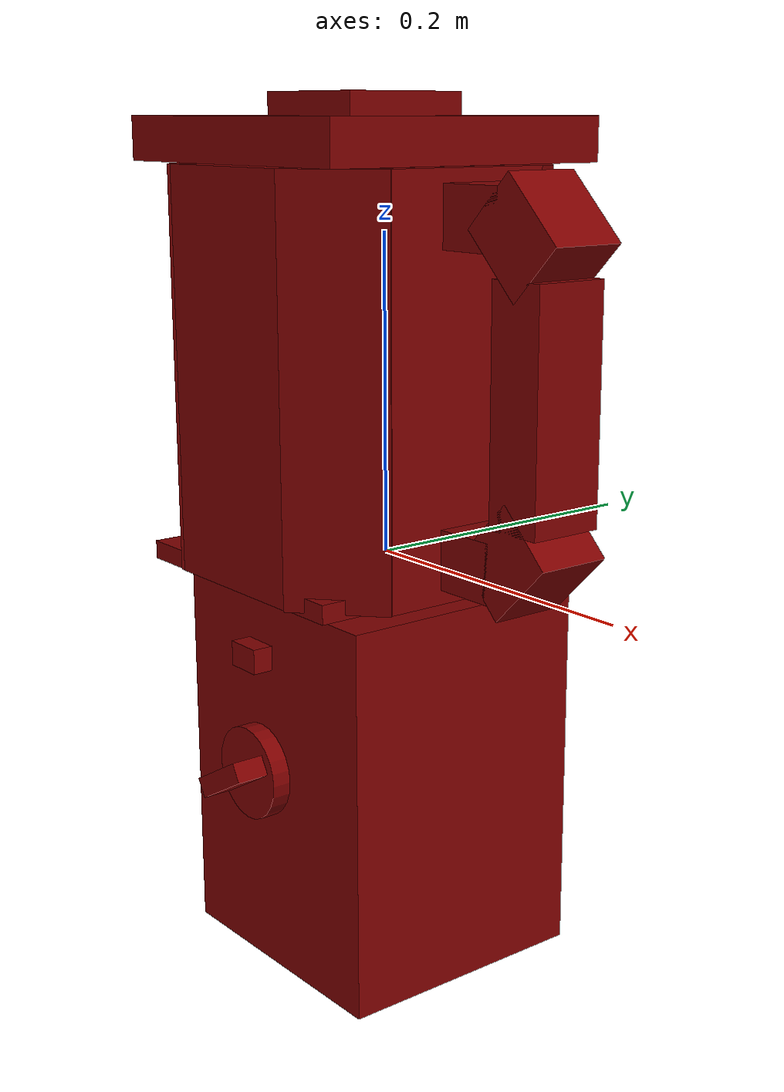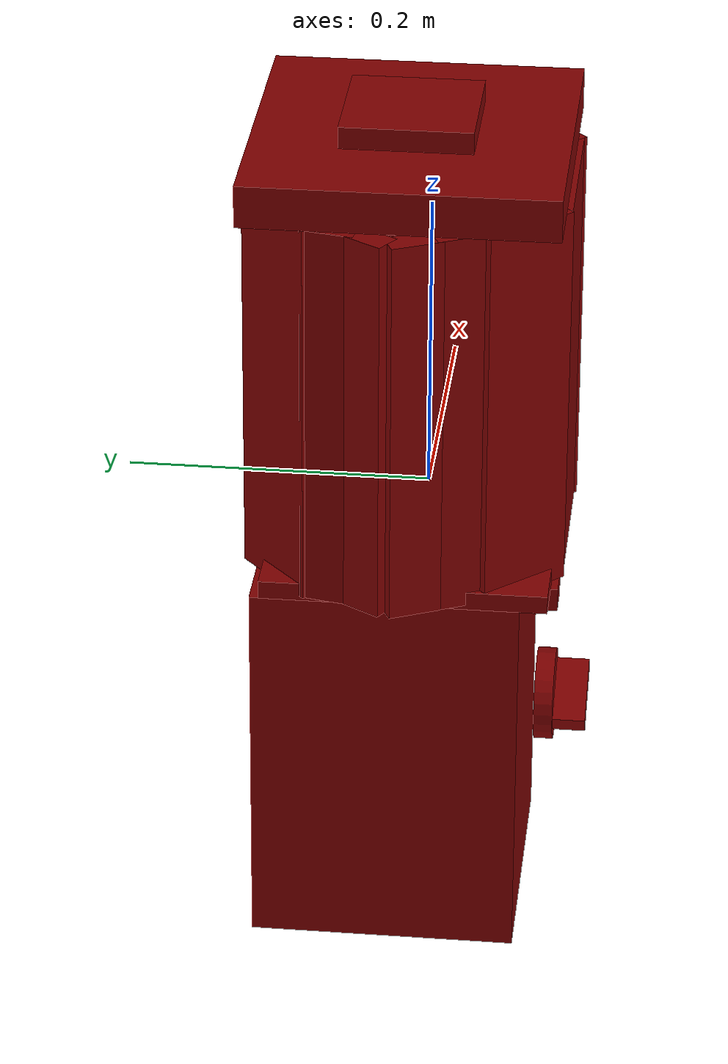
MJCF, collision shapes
<?xml version='1.0' encoding='UTF-8'?>
<mujoco model="model">
  <option timestep="0.0005" gravity="0.0 0.0 -9.81"/>
  <compiler angle="radian"/>
  <asset>
    <mesh file="visuals/Blade001.obj" name="Blade001_vis"/>
    <mesh file="visuals/Body001.obj" name="Body001_vis"/>
    <mesh file="visuals/Button001.obj" name="Button001_vis"/>
    <mesh file="visuals/Jug001.obj" name="Jug001_vis"/>
    <mesh file="visuals/Jug001_Clear.obj" name="Jug001_Clear_vis"/>
    <mesh file="visuals/Knob001.obj" name="Knob001_vis"/>
    <mesh file="visuals/Lid001.obj" name="Lid001_vis"/>
    <texture file="visuals/T_BC001.png" name="Body001_material" type="2d"/>
    <material name="Body001_material" rgba="1 1 1 1.0" texture="Body001_material" shininess="0.4472135901451111" specular="0.3103448502657381"/>
    <texture file="visuals/T_BC001.png" name="Button001_material" type="2d"/>
    <material name="Button001_material" rgba="1 1 1 1.0" texture="Button001_material" shininess="0.4472135901451111" specular="0.3103448502657381"/>
    <texture file="visuals/T_BC001.png" name="Jug001_Clear_material" type="2d"/>
    <material name="Jug001_Clear_material" rgba="1 1 1 0.699999988079071" texture="Jug001_Clear_material" shininess="0.4472135901451111" specular="0.3103448502657381"/>
    <texture file="visuals/T_BC001.png" name="Blade001_material" type="2d"/>
    <material name="Blade001_material" rgba="1 1 1 1.0" texture="Blade001_material" shininess="0.4472135901451111" specular="5"/>
    <texture file="visuals/T_BC001.png" name="Jug001_material" type="2d"/>
    <material name="Jug001_material" rgba="1 1 1 1.0" texture="Jug001_material" shininess="0.4472135901451111" specular="0.3103448502657381"/>
    <texture file="visuals/T_BC001.png" name="Knob001_material" type="2d"/>
    <material name="Knob001_material" rgba="1 1 1 1.0" texture="Knob001_material" shininess="0.4472135901451111" specular="0.3103448502657381"/>
    <texture file="visuals/T_BC001.png" name="Lid001_material" type="2d"/>
    <material name="Lid001_material" rgba="1 1 1 1.0" texture="Lid001_material" shininess="0.4472135901451111" specular="0.3103448502657381"/>
  </asset>
  <default>
    <default class="visual">
      <geom conaffinity="0" contype="0" group="1" type="mesh"/>
    </default>
    <default class="collision">
      <geom group="0" rgba="0.5 0 0 0.5"/>
    </default>
    <default class="spawn">
      <geom group="0" rgba="1 1 1 0.5" contype="0" conaffinity="0"/>
      <site group="0" rgba="1 1 1 0.5"/>
    </default>
    <default class="region">
      <geom group="1" conaffinity="0" contype="0" rgba="0 1 0 0"/>
    </default>
  </default>
  <worldbody>
    <body>
      <body name="object">
        <geom mesh="Body001_vis" type="mesh" solimp="0.998 0.998 0.001" solref="0.001 1" friction="0.95 0.3 0.1" class="visual" material="Body001_material"/>
        <geom class="collision" type="box" pos="-0.03150521 0.01790235 -0.15448266" size="0.09086184948682785 0.08694292604923248 0.12657050788402557" quat="1.0 0.0 0.0 0.0"/>
        <body name="Button001">
          <joint axis="0.0 1.0 0.0" pos="-0.03199682 -0.07664007 -0.08264117" limited="true" name="Button001_joint" range="0.0 0.005" type="slide" damping="1" frictionloss="1" armature=".01" stiffness="0.05"/>
          <geom mesh="Button001_vis" type="mesh" solimp="0.998 0.998 0.001" solref="0.001 1" friction="0.95 0.3 0.1" class="visual" material="Button001_material"/>
          <geom class="collision" type="box" pos="-0.03208427 -0.08243477 -0.06164037" size="0.012408987618982792 0.006734694819897413 0.008026663213968277" quat="1.0 0.0 0.0 0.0"/>
        </body>
        <body name="Jug001_Clear">
          <geom class="region" name="reg_int" type="box" pos="-0.032130729999999996 0.009665190000000004 0.13343475" size="0.06979121 0.0672799 0.08648693"/>
          <joint axis="0.0 0.0 1.0" pos="0.00048447 0.01028055 0.10387684" limited="true" name="Jug001_Clear_joint" range="0.0 0.05" type="slide" damping="1" frictionloss="1" armature=".01" stiffness="0.05"/>
          <geom mesh="Jug001_Clear_vis" type="mesh" solimp="0.998 0.998 0.001" solref="0.001 1" friction="0.95 0.3 0.1" class="visual" material="Jug001_Clear_material"/>
          <geom class="collision" type="box" pos="-0.03396280 0.10241802 0.11139487" size="0.056509215384721756 0.008711088448762894 0.12795716524124146" quat="1.0 0.0 0.0 0.0"/>
          <geom class="collision" type="box" pos="-0.11034779 0.08306386 0.11139487" size="0.032513655722141266 0.008711197413504124 0.12795889377593994" quat="0.933960497379303 0.0 0.0 0.35737624764442444"/>
          <geom class="collision" type="box" pos="0.04290636 0.08456930 0.11139487" size="0.032513655722141266 0.008711197413504124 0.12795889377593994" quat="0.933960497379303 0.0 -0.0 -0.35737624764442444"/>
          <geom class="collision" type="box" pos="-0.03396280 -0.08584690 0.11139487" size="0.05650930479168892 0.008711099624633789 0.12795734405517578" quat="1.0 0.0 0.0 0.0"/>
          <geom class="collision" type="box" pos="0.04290637 -0.06799819 0.11139487" size="0.032513655722141266 0.008711197413504124 0.12795889377593994" quat="0.933960497379303 0.0 0.0 0.35737624764442444"/>
          <geom class="collision" type="box" pos="-0.10846017 -0.06547634 0.11139487" size="0.03251366317272186 0.008711198344826698 0.12795889377593994" quat="0.9170170426368713 0.0 -0.0 -0.3988479971885681"/>
          <geom class="collision" type="box" pos="0.06268667 0.00538297 0.11139487" size="0.008711114525794983 0.05650939792394638 0.1279575228691101" quat="1.0 0.0 0.0 0.0"/>
          <geom class="collision" type="box" pos="-0.13156153 -0.02833338 0.11139487" size="0.017218004912137985 0.008711198344826698 0.12795889377593994" quat="0.5351915955543518 0.0 0.0 0.8447307348251343"/>
          <geom class="collision" type="box" pos="-0.14480387 -0.00115176 0.11139487" size="0.017218004912137985 0.008711198344826698 0.12795889377593994" quat="0.5351915955543518 0.0 0.0 0.8447307348251343"/>
          <geom class="collision" type="box" pos="-0.14253873 0.02812075 0.11139487" size="0.017218006774783134 0.008711198344826698 0.12795889377593994" quat="0.8767032623291016 0.0 0.0 0.481031596660614"/>
          <geom class="collision" type="box" pos="-0.13347819 0.05112058 0.11139487" size="0.017218006774783134 0.008711198344826698 0.12795889377593994" quat="0.7761645317077637 0.0 0.0 0.6305304169654846"/>
          <geom class="collision" type="box" pos="-0.04270641 0.00459594 -0.01354376" size="0.09490712732076645 0.0923057422041893 0.006025748793035746" quat="1.0 0.0 0.0 0.0"/>
          <geom class="collision" type="box" pos="0.09001044 0.01013495 0.21243706" size="0.02718629129230976 0.02422558329999447 0.018655451014637947" quat="1.0 0.0 0.0 0.0"/>
          <geom class="collision" type="box" pos="0.12858595 0.01013495 0.20359226" size="0.02718629315495491 0.02422558329999447 0.023177461698651314" quat="0.9241241216659546 -2.755961454328163e-15 0.38209235668182373 5.1337494255676575e-08"/>
          <geom class="collision" type="box" pos="0.13291556 0.01013495 0.10968557" size="0.01915726438164711 0.02422558329999447 0.07122552394866943" quat="1.0 0.0 0.0 0.0"/>
          <geom class="collision" type="box" pos="0.08524320 0.01013495 0.01115648" size="0.02718629129230976 0.02422558329999447 0.018655451014637947" quat="1.0 0.0 0.0 0.0"/>
          <geom class="collision" type="box" pos="0.12381871 0.01013495 0.02000128" size="0.02718629315495491 0.02422558329999447 0.023177461698651314" quat="0.9241241216659546 4.973259717388242e-16 -0.3820923864841461 5.133750136110393e-08"/>
          <body name="Blade001">
            <joint axis="0.0 0.0 1.0" pos="-0.03193976 0.01031788 0.01786305" limited="false" name="Blade001_joint" range="0 360" type="hinge" damping="1" frictionloss="1" armature=".01" stiffness="0.05"/>
            <geom mesh="Blade001_vis" type="mesh" solimp="0.998 0.998 0.001" solref="0.001 1" friction="0.95 0.3 0.1" class="visual" material="Blade001_material"/>
            <geom class="collision" type="box" pos="-0.03158057 0.01036866 0.00090644" size="0.015457836911082268 0.00963042676448822 0.0011948224855586886" quat="1.0 0.0 0.0 0.0"/>
            <geom class="collision" type="box" pos="-0.03187269 0.03373652 0.01832443" size="0.019890112802386284 0.00963042676448822 0.0011948226019740105" quat="0.5970932841300964 0.378787100315094 -0.3787870407104492 0.5970932245254517"/>
            <geom class="collision" type="box" pos="-0.03187269 0.01066077 0.00090644" size="0.009630427695810795 0.015457837842404842 0.0011948224855586886" quat="1.0 0.0 0.0 0.0"/>
            <geom class="collision" type="box" pos="-0.03187269 -0.01338489 0.01832443" size="0.019890112802386284 0.00963042676448822 0.0011948226019740105" quat="0.5970932245254517 -0.37878715991973877 0.3787870705127716 0.5970932245254517"/>
            <geom class="collision" type="box" pos="-0.05585026 0.01028198 0.01832443" size="0.019890110939741135 0.00963042676448822 0.0011948224855586886" quat="0.8444173336029053 -3.837460837985418e-08 0.5356858968734741 -5.7312807832943236e-09"/>
            <geom class="collision" type="box" pos="-0.00828349 0.01028198 0.01832443" size="0.019890112802386284 0.00963042676448822 0.0011948226019740105" quat="1.0835157837618681e-07 0.5356858968734741 1.1074719452608406e-07 -0.8444173336029053"/>
          </body>
          <body name="Jug001">
            <geom mesh="Jug001_vis" type="mesh" solimp="0.998 0.998 0.001" solref="0.001 1" friction="0.95 0.3 0.1" class="visual" material="Jug001_material"/>
            <geom class="collision" type="cylinder" pos="-0.03100953 0.01057824 -0.01475727" size="0.053082868456840515 0.012121236883103848" quat="1.0 0.0 0.0 0.0"/>
            <geom class="collision" type="box" pos="-0.03396280 0.10241802 0.11139487" size="0.056509215384721756 0.008711088448762894 0.12795716524124146" quat="1.0 0.0 0.0 0.0"/>
            <geom class="collision" type="box" pos="-0.11034779 0.08306386 0.11139487" size="0.032513655722141266 0.008711197413504124 0.12795889377593994" quat="0.933960497379303 0.0 0.0 0.35737624764442444"/>
            <geom class="collision" type="box" pos="0.04290636 0.08456930 0.11139487" size="0.032513655722141266 0.008711197413504124 0.12795889377593994" quat="0.933960497379303 0.0 -0.0 -0.35737624764442444"/>
            <geom class="collision" type="box" pos="-0.03396280 -0.08584690 0.11139487" size="0.05650930479168892 0.008711099624633789 0.12795734405517578" quat="1.0 0.0 0.0 0.0"/>
            <geom class="collision" type="box" pos="0.04290637 -0.06799819 0.11139487" size="0.032513655722141266 0.008711197413504124 0.12795889377593994" quat="0.933960497379303 0.0 0.0 0.35737624764442444"/>
            <geom class="collision" type="box" pos="-0.10846017 -0.06547634 0.11139487" size="0.03251366317272186 0.008711198344826698 0.12795889377593994" quat="0.9170170426368713 0.0 -0.0 -0.3988479971885681"/>
            <geom class="collision" type="box" pos="0.06268667 0.00538297 0.11139487" size="0.008711114525794983 0.05650939792394638 0.1279575228691101" quat="1.0 0.0 0.0 0.0"/>
            <geom class="collision" type="box" pos="-0.13156153 -0.02833338 0.11139487" size="0.017218004912137985 0.008711198344826698 0.12795889377593994" quat="0.5351915955543518 0.0 0.0 0.8447307348251343"/>
            <geom class="collision" type="box" pos="-0.14480387 -0.00115176 0.11139487" size="0.017218004912137985 0.008711198344826698 0.12795889377593994" quat="0.5351915955543518 0.0 0.0 0.8447307348251343"/>
            <geom class="collision" type="box" pos="-0.14253873 0.02812075 0.11139487" size="0.017218006774783134 0.008711198344826698 0.12795889377593994" quat="0.8767032623291016 0.0 0.0 0.481031596660614"/>
            <geom class="collision" type="box" pos="-0.13347819 0.05112058 0.11139487" size="0.017218006774783134 0.008711198344826698 0.12795889377593994" quat="0.7761645317077637 0.0 0.0 0.6305304169654846"/>
            <geom class="collision" type="box" pos="-0.04270641 0.00459594 -0.01354376" size="0.09490712732076645 0.0923057422041893 0.006025748793035746" quat="1.0 0.0 0.0 0.0"/>
            <geom class="collision" type="box" pos="0.09001044 0.01013495 0.21243706" size="0.02718629129230976 0.02422558329999447 0.018655451014637947" quat="1.0 0.0 0.0 0.0"/>
            <geom class="collision" type="box" pos="0.12858595 0.01013495 0.20359226" size="0.02718629315495491 0.02422558329999447 0.023177461698651314" quat="0.9241241216659546 -2.755961454328163e-15 0.38209235668182373 5.1337494255676575e-08"/>
            <geom class="collision" type="box" pos="0.13291556 0.01013495 0.10968557" size="0.01915726438164711 0.02422558329999447 0.07122552394866943" quat="1.0 0.0 0.0 0.0"/>
            <geom class="collision" type="box" pos="0.08524320 0.01013495 0.01115648" size="0.02718629129230976 0.02422558329999447 0.018655451014637947" quat="1.0 0.0 0.0 0.0"/>
            <geom class="collision" type="box" pos="0.12381871 0.01013495 0.02000128" size="0.02718629315495491 0.02422558329999447 0.023177461698651314" quat="0.9241241216659546 4.973259717388242e-16 -0.3820923864841461 5.133750136110393e-08"/>
          </body>
        </body>
        <body name="Knob001">
          <joint axis="1.163581941909797e-07 1.0 2.0153819946244766e-07" pos="-0.03241558 -0.09221647 -0.13983136" limited="true" name="Knob001_joint" range="0.0 4.153883619746504" type="hinge" damping="0.05" frictionloss="0.1" armature="0.001"/>
          <geom mesh="Knob001_vis" type="mesh" solimp="0.998 0.998 0.001" solref="0.001 1" friction="0.95 0.3 0.1" class="visual" material="Knob001_material"/>
          <geom class="collision" type="cylinder" pos="-0.03200669 -0.08238636 -0.13961077" size="0.030412523075938225 0.006172697059810162" quat="0.7071067094802856 0.7071068286895752 0.0 0.0"/>
          <geom class="collision" type="box" pos="-0.03214500 -0.09542076 -0.13954633" size="0.006515718065202236 0.014615816064178944 0.023852845653891563" quat="0.8647358417510986 -4.5700311651554904e-15 0.5022270083427429 6.747864489398125e-08"/>
        </body>
        <body name="Lid001">
          <joint axis="0.0 0.0 1.0" pos="-0.04194411 0.01025638 0.25305092" limited="true" name="Lid001_joint" range="0.0 0.05" type="slide" damping="1" frictionloss="1" armature=".01" stiffness="0.05"/>
          <geom mesh="Lid001_vis" type="mesh" solimp="0.998 0.998 0.001" solref="0.001 1" friction="0.95 0.3 0.1" class="visual" material="Lid001_material"/>
          <geom class="collision" type="box" pos="-0.03560916 0.00918471 0.25380158" size="0.10527113080024719 0.10018409788608551 0.01374603621661663" quat="1.0 0.0 0.0 0.0"/>
          <geom class="collision" type="box" pos="-0.03411070 0.01050357 0.27079961" size="0.042463742196559906 0.04234278202056885 0.01106703095138073" quat="1.0 0.0 0.0 0.0"/>
        </body>
        <geom class="region" name="reg_main" type="box" pos="-0.041557159999999996 0.010226100000000002 0.0" size="0.11028239 0.10077628 0.28032143"/>
      </body>
    </body>
  </worldbody>
  <actuator>
    <motor name="Button001_joint_actuator" joint="Button001_joint" gear="0.5"/>
    <motor name="Jug001_Clear_joint_actuator" joint="Jug001_Clear_joint" gear="0.5"/>
    <motor name="Knob001_joint_actuator" joint="Knob001_joint" gear="10"/>
    <motor name="Lid001_joint_actuator" joint="Lid001_joint" gear="0.5"/>
    <motor name="Blade001_joint_actuator" joint="Blade001_joint" gear="10"/>
  </actuator>
</mujoco>
